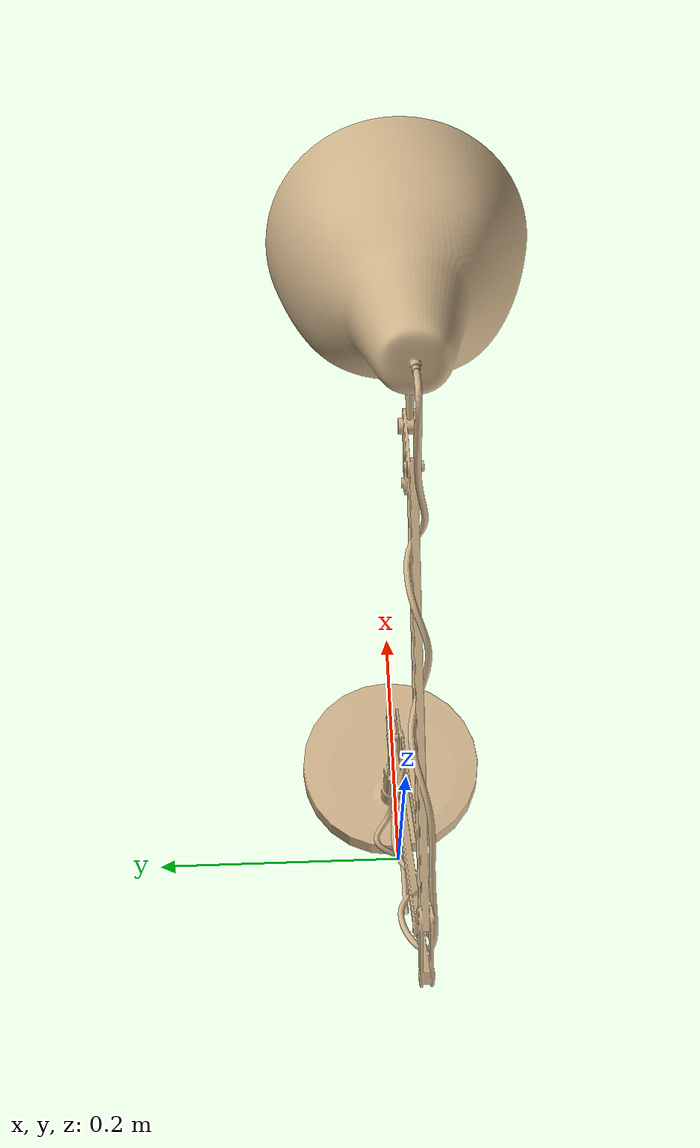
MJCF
<mujoco model="desk_lamp">
    <asset>
        <mesh file="arm.stl" name="part_arm" scale="1 1 1" />
        <mesh file="base.stl" name="part_base" scale="1 1 1" />
        <mesh file="head.stl" name="part_head" scale="1 1 1" />
    </asset>
    <equality>
        </equality>
    <worldbody>
        <body name="arm_part" pos="0 0 0" quat="1 0 0 0">
        <geom conaffinity="0" contype="0" density="0" mesh="part_arm" name="arm_part_mesh" pos="0 0 0" rgba="0.82 0.71 0.55 1" type="mesh" />
        </body>
        <body name="base_part" pos="0 0 0" quat="1 0 0 0">
        <geom conaffinity="0" contype="0" density="0" mesh="part_base" name="base_part_mesh" pos="0 0 0" rgba="0.82 0.71 0.55 1" type="mesh" />
        </body>

        <body name="head_part" pos="0 0 0" quat="1 0 0 0">
        <geom conaffinity="0" contype="0" density="0" mesh="part_head" name="head_part_mesh" pos="0 0 0" rgba="0.82 0.71 0.55 1" type="mesh" />
        </body>
    </worldbody>
</mujoco>
